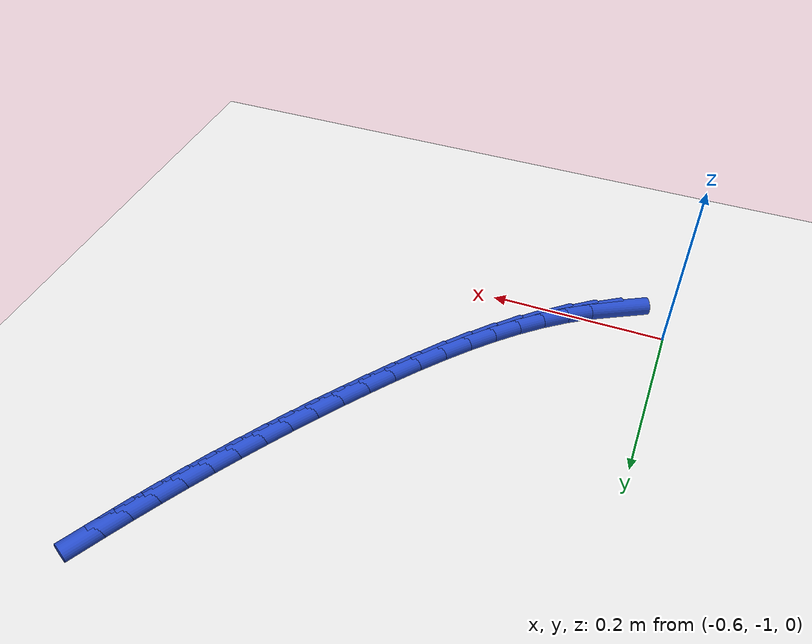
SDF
<sdf version="1.6">
 <world name="default">
  <model name="ground_plane">
   <static>1</static>
   <link name="link">
    <collision name="collision">
     <geometry><plane><normal>0 0 1</normal><size>100 100</size></plane></geometry>
     <surface><friction><ode><mu>100</mu><mu2>50</mu2></ode></friction></surface>
    </collision>
    <visual name="visual">
     <cast_shadows>0</cast_shadows>
     <geometry><plane><normal>0 0 1</normal><size>100 100</size></plane></geometry>
     <material>
      <script><uri>file://media/materials/scripts/gazebo.material</uri><name>Gazebo/WhiteGlow</name></script>
     </material>
    </visual>
   </link>
  </model>
  <model name="line">
   <link name="link_211">
    <pose>-0.5381910028501209 -1.0208768396061942 0.01 0 1.57 0.5029909382533606</pose>
    <collision name="collision">
     <geometry><cylinder><radius>0.01</radius><length>0.08</length></cylinder></geometry>
    </collision>
    <visual name="visual">
     <material>
      <script><name>Gazebo/Blue</name><uri>file://media/materials/scripts/gazebo.material</uri></script>
     </material>
     <geometry><cylinder><radius>0.01</radius><length>0.08</length></cylinder></geometry>
    </visual>
   </link>
   <link name="link_212">
    <pose>-0.5128711028627464 -1.0069460222926847 0.01 0 1.57 0.589774001919585</pose>
    <collision name="collision">
     <geometry><cylinder><radius>0.01</radius><length>0.08</length></cylinder></geometry>
    </collision>
    <visual name="visual">
     <material>
      <script><name>Gazebo/Blue</name><uri>file://media/materials/scripts/gazebo.material</uri></script>
     </material>
     <geometry><cylinder><radius>0.01</radius><length>0.08</length></cylinder></geometry>
    </visual>
   </link>
   <link name="link_213">
    <pose>-0.4881774205084395 -0.9904203092274468 0.01 0 1.57 0.6638760408179614</pose>
    <collision name="collision">
     <geometry><cylinder><radius>0.01</radius><length>0.08</length></cylinder></geometry>
    </collision>
    <visual name="visual">
     <material>
      <script><name>Gazebo/Blue</name><uri>file://media/materials/scripts/gazebo.material</uri></script>
     </material>
     <geometry><cylinder><radius>0.01</radius><length>0.08</length></cylinder></geometry>
    </visual>
   </link>
   <link name="link_214">
    <pose>-0.46412065393999147 -0.9715998728406109 0.01 0 1.57 0.7268058191928931</pose>
    <collision name="collision">
     <geometry><cylinder><radius>0.01</radius><length>0.08</length></cylinder></geometry>
    </collision>
    <visual name="visual">
     <material>
      <script><name>Gazebo/Blue</name><uri>file://media/materials/scripts/gazebo.material</uri></script>
     </material>
     <geometry><cylinder><radius>0.01</radius><length>0.08</length></cylinder></geometry>
    </visual>
   </link>
   <link name="link_215">
    <pose>-0.44071150131019343 -0.9507848855623051 0.01 0 1.57 0.7800629577628011</pose>
    <collision name="collision">
     <geometry><cylinder><radius>0.01</radius><length>0.08</length></cylinder></geometry>
    </collision>
    <visual name="visual">
     <material>
      <script><name>Gazebo/Blue</name><uri>file://media/materials/scripts/gazebo.material</uri></script>
     </material>
     <geometry><cylinder><radius>0.01</radius><length>0.08</length></cylinder></geometry>
    </visual>
   </link>
   <link name="link_216">
    <pose>-0.41796066077183663 -0.928275519822659 0.01 0 1.57 0.8249931060957606</pose>
    <collision name="collision">
     <geometry><cylinder><radius>0.01</radius><length>0.08</length></cylinder></geometry>
    </collision>
    <visual name="visual">
     <material>
      <script><name>Gazebo/Blue</name><uri>file://media/materials/scripts/gazebo.material</uri></script>
     </material>
     <geometry><cylinder><radius>0.01</radius><length>0.08</length></cylinder></geometry>
    </visual>
   </link>
   <link name="link_217">
    <pose>-0.39587883047771244 -0.9043719480518013 0.01 0 1.57 0.8627329459095449</pose>
    <collision name="collision">
     <geometry><cylinder><radius>0.01</radius><length>0.08</length></cylinder></geometry>
    </collision>
    <visual name="visual">
     <material>
      <script><name>Gazebo/Blue</name><uri>file://media/materials/scripts/gazebo.material</uri></script>
     </material>
     <geometry><cylinder><radius>0.01</radius><length>0.08</length></cylinder></geometry>
    </visual>
   </link>
   <link name="link_218">
    <pose>-0.374476708580612 -0.8793743426798618 0.01 0 1.57 0.8942012658816538</pose>
    <collision name="collision">
     <geometry><cylinder><radius>0.01</radius><length>0.08</length></cylinder></geometry>
    </collision>
    <visual name="visual">
     <material>
      <script><name>Gazebo/Blue</name><uri>file://media/materials/scripts/gazebo.material</uri></script>
     </material>
     <geometry><cylinder><radius>0.01</radius><length>0.08</length></cylinder></geometry>
    </visual>
   </link>
   <link name="link_219">
    <pose>-0.3537649932333266 -0.8535828761369693 0.01 0 1.57 0.9201090542482669</pose>
    <collision name="collision">
     <geometry><cylinder><radius>0.01</radius><length>0.08</length></cylinder></geometry>
    </collision>
    <visual name="visual">
     <material>
      <script><name>Gazebo/Blue</name><uri>file://media/materials/scripts/gazebo.material</uri></script>
     </material>
     <geometry><cylinder><radius>0.01</radius><length>0.08</length></cylinder></geometry>
    </visual>
   </link>
   <link name="link_220">
    <pose>-0.33375438258864754 -0.8272977208532528 0.01 0 1.57 0.9409734348356712</pose>
    <collision name="collision">
     <geometry><cylinder><radius>0.01</radius><length>0.08</length></cylinder></geometry>
    </collision>
    <visual name="visual">
     <material>
      <script><name>Gazebo/Blue</name><uri>file://media/materials/scripts/gazebo.material</uri></script>
     </material>
     <geometry><cylinder><radius>0.01</radius><length>0.08</length></cylinder></geometry>
    </visual>
   </link>
   <link name="link_221">
    <pose>-0.31445557479936603 -0.800819049258842 0.01 0 1.57 0.9571535176640471</pose>
    <collision name="collision">
     <geometry><cylinder><radius>0.01</radius><length>0.08</length></cylinder></geometry>
    </collision>
    <visual name="visual">
     <material>
      <script><name>Gazebo/Blue</name><uri>file://media/materials/scripts/gazebo.material</uri></script>
     </material>
     <geometry><cylinder><radius>0.01</radius><length>0.08</length></cylinder></geometry>
    </visual>
   </link>
   <link name="link_222">
    <pose>-0.2958789479666647 -0.7744450947146589 0.01 0 1.57 0.9705615052075681</pose>
    <collision name="collision">
     <geometry><cylinder><radius>0.01</radius><length>0.08</length></cylinder></geometry>
    </collision>
    <visual name="visual">
     <material>
      <script><name>Gazebo/Blue</name><uri>file://media/materials/scripts/gazebo.material</uri></script>
     </material>
     <geometry><cylinder><radius>0.01</radius><length>0.08</length></cylinder></geometry>
    </visual>
   </link>
   <link name="link_223">
    <pose>-0.278013465094882 -0.7483443447726783 0.01 0 1.57 0.9840153092900383</pose>
    <collision name="collision">
     <geometry><cylinder><radius>0.01</radius><length>0.08</length></cylinder></geometry>
    </collision>
    <visual name="visual">
     <material>
      <script><name>Gazebo/Blue</name><uri>file://media/materials/scripts/gazebo.material</uri></script>
     </material>
     <geometry><cylinder><radius>0.01</radius><length>0.08</length></cylinder></geometry>
    </visual>
   </link>
   <link name="link_224">
    <pose>-0.26081355725593663 -0.7224760713301992 0.01 0 1.57 0.997684843654626</pose>
    <collision name="collision">
     <geometry><cylinder><radius>0.01</radius><length>0.08</length></cylinder></geometry>
    </collision>
    <visual name="visual">
     <material>
      <script><name>Gazebo/Blue</name><uri>file://media/materials/scripts/gazebo.material</uri></script>
     </material>
     <geometry><cylinder><radius>0.01</radius><length>0.08</length></cylinder></geometry>
    </visual>
   </link>
   <link name="link_225">
    <pose>-0.2442305228864871 -0.6967805668561778 0.01 0 1.57 1.0114711248655934</pose>
    <collision name="collision">
     <geometry><cylinder><radius>0.01</radius><length>0.08</length></cylinder></geometry>
    </collision>
    <visual name="visual">
     <material>
      <script><name>Gazebo/Blue</name><uri>file://media/materials/scripts/gazebo.material</uri></script>
     </material>
     <geometry><cylinder><radius>0.01</radius><length>0.08</length></cylinder></geometry>
    </visual>
   </link>
   <link name="link_226">
    <pose>-0.2282156604231916 -0.6711981238195691 0.01 0 1.57 1.0252675565382492</pose>
    <collision name="collision">
     <geometry><cylinder><radius>0.01</radius><length>0.08</length></cylinder></geometry>
    </collision>
    <visual name="visual">
     <material>
      <script><name>Gazebo/Blue</name><uri>file://media/materials/scripts/gazebo.material</uri></script>
     </material>
     <geometry><cylinder><radius>0.01</radius><length>0.08</length></cylinder></geometry>
    </visual>
   </link>
   <link name="link_227">
    <pose>-0.21272026830270838 -0.6456690346893285 0.01 0 1.57 1.0389624462667706</pose>
    <collision name="collision">
     <geometry><cylinder><radius>0.01</radius><length>0.08</length></cylinder></geometry>
    </collision>
    <visual name="visual">
     <material>
      <script><name>Gazebo/Blue</name><uri>file://media/materials/scripts/gazebo.material</uri></script>
     </material>
     <geometry><cylinder><radius>0.01</radius><length>0.08</length></cylinder></geometry>
    </visual>
   </link>
   <link name="link_228">
    <pose>-0.1976956449616956 -0.6201335919344111 0.01 0 1.57 1.05244190572996</pose>
    <collision name="collision">
     <geometry><cylinder><radius>0.01</radius><length>0.08</length></cylinder></geometry>
    </collision>
    <visual name="visual">
     <material>
      <script><name>Gazebo/Blue</name><uri>file://media/materials/scripts/gazebo.material</uri></script>
     </material>
     <geometry><cylinder><radius>0.01</radius><length>0.08</length></cylinder></geometry>
    </visual>
   </link>
   <link name="link_229">
    <pose>-0.1830930888368116 -0.5945320880237727 0.01 0 1.57 1.065592980443054</pose>
    <collision name="collision">
     <geometry><cylinder><radius>0.01</radius><length>0.08</length></cylinder></geometry>
    </collision>
    <visual name="visual">
     <material>
      <script><name>Gazebo/Blue</name><uri>file://media/materials/scripts/gazebo.material</uri></script>
     </material>
     <geometry><cylinder><radius>0.01</radius><length>0.08</length></cylinder></geometry>
    </visual>
   </link>
   <link name="link_230">
    <pose>-0.1688638983647146 -0.5688048154263684 0.01 0 1.57 1.0783068280640842</pose>
    <collision name="collision">
     <geometry><cylinder><radius>0.01</radius><length>0.08</length></cylinder></geometry>
    </collision>
    <visual name="visual">
     <material>
      <script><name>Gazebo/Blue</name><uri>file://media/materials/scripts/gazebo.material</uri></script>
     </material>
     <geometry><cylinder><radius>0.01</radius><length>0.08</length></cylinder></geometry>
    </visual>
   </link>
   <link name="link_231">
    <pose>-0.15495937198206294 -0.5428920666111535 0.01 0 1.57 1.0904817546690089</pose>
    <collision name="collision">
     <geometry><cylinder><radius>0.01</radius><length>0.08</length></cylinder></geometry>
    </collision>
    <visual name="visual">
     <material>
      <script><name>Gazebo/Blue</name><uri>file://media/materials/scripts/gazebo.material</uri></script>
     </material>
     <geometry><cylinder><radius>0.01</radius><length>0.08</length></cylinder></geometry>
    </visual>
   </link>
  </model>
 </world>
</sdf>
